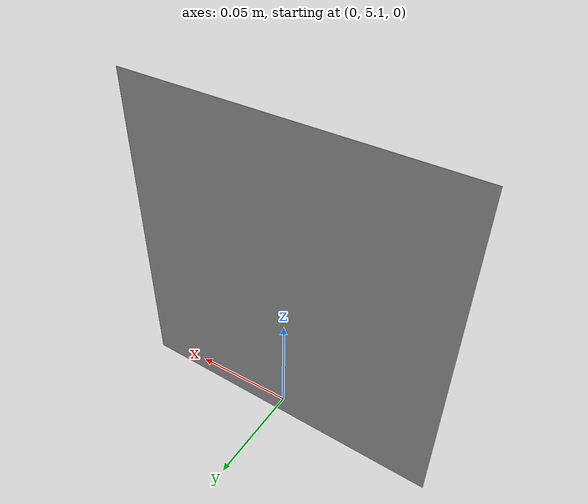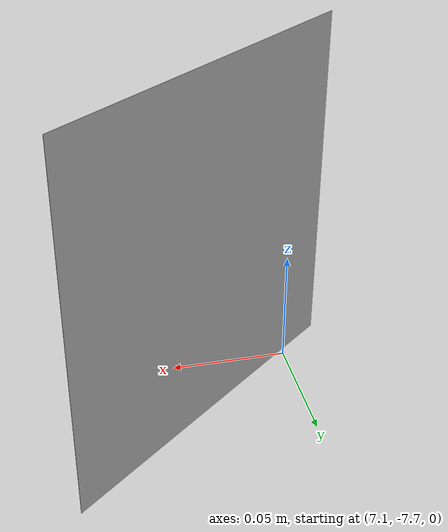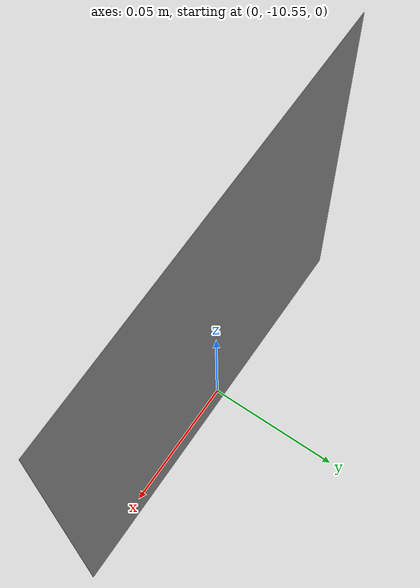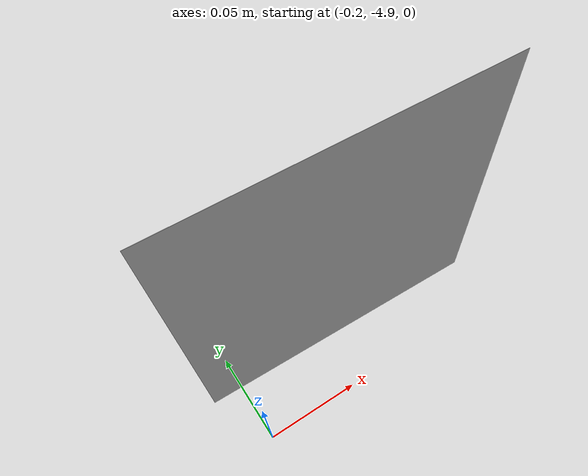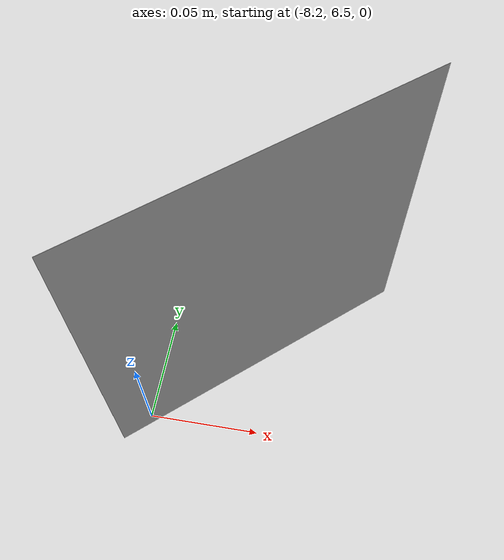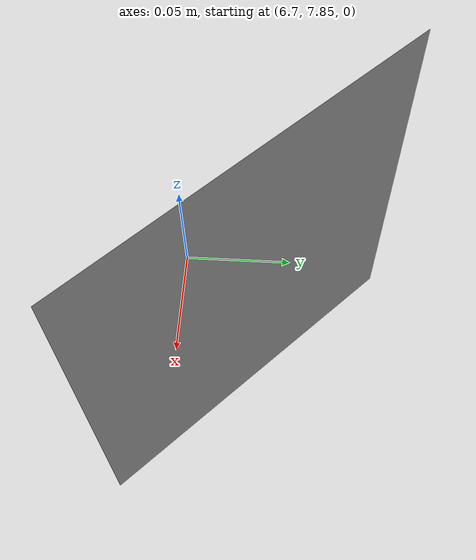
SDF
<sdf version="1.6">
 <world name="default">
  <scene><ambient>0.4 0.4 0.4 1</ambient><background>0.7 0.7 0.7 1</background><shadows>1</shadows></scene>
  <light name="sun" type="directional">
   <pose>0 0 10 0 -0 0</pose>
   <diffuse>0.8 0.8 0.8 1</diffuse>
   <specular>0.2 0.2 0.2 1</specular>
   <attenuation>
    <range>1000</range>
    <constant>0.9</constant>
    <linear>0.01</linear>
    <quadratic>0.001</quadratic>
   </attenuation>
   <direction>-0.5 0.1 -0.9</direction>
  </light>
  <model name="my_ground_plane">
   <static>1</static>
   <link name="link">
    <collision name="collision">
     <geometry><plane><normal>0 0 1</normal><size>100 100</size></plane></geometry>
     <surface><friction><ode><mu>100</mu><mu2>50</mu2></ode></friction></surface>
    </collision>
    <visual name="visual">
     <cast_shadows>0</cast_shadows>
     <geometry><plane><normal>0 0 1</normal><size>40 40</size></plane></geometry>
     <material>
      <script>
       <uri>model://my_ground_plane/materials/scripts</uri>
       <uri>model://my_ground_plane/materials/textures</uri>
       <name>MyGroundPlane/Image</name>
      </script>
     </material>
    </visual>
   </link>
  </model>
  <physics name="default_physics" default="0" type="ode">
   <real_time_update_rate>1000</real_time_update_rate>
   <max_step_size>0.001</max_step_size>
   <real_time_factor>3</real_time_factor>
   <ode>
    <solver>
     <type>quick</type>
     <iters>150</iters>
     <precon_iters>0</precon_iters>
     <sor>1.4</sor>
     <use_dynamic_moi_rescaling>1</use_dynamic_moi_rescaling>
    </solver>
    <constraints>
     <cfm>1e-05</cfm>
     <erp>0.2</erp>
     <contact_max_correcting_vel>2000</contact_max_correcting_vel>
     <contact_surface_layer>0.01</contact_surface_layer>
    </constraints>
   </ode>
  </physics>
  <gravity>0 0 -9.8</gravity>
  <magnetic_field>6e-06 2.3e-05 -4.2e-05</magnetic_field>
  <atmosphere type="adiabatic"/>
  <audio><device>default</device></audio>
  <spherical_coordinates>
   <surface_model>EARTH_WGS84</surface_model>
   <latitude_deg>0</latitude_deg>
   <longitude_deg>0</longitude_deg>
   <elevation>0</elevation>
   <heading_deg>0</heading_deg>
  </spherical_coordinates>
  <model name="marker1">
   <link name="link">
    <inertial>
     <mass>0.001</mass>
     <inertia>
      <ixx>3.75e-06</ixx>
      <ixy>0</ixy>
      <ixz>0</ixz>
      <iyy>1.875e-06</iyy>
      <iyz>0</iyz>
      <izz>1.875e-06</izz>
     </inertia>
    </inertial>
    <visual name="front_visual">
     <pose>5e-05 0 0 0 -0 0</pose>
     <geometry><box><size>0.0001 0.15 0.15</size></box></geometry>
     <material>
      <script>
       <uri>model://marker1/materials/scripts</uri>
       <uri>model://marker1/materials/textures</uri>
       <name>Marker1</name>
      </script>
     </material>
    </visual>
    <visual name="rear_visual">
     <pose>-5e-05 0 0 0 -0 0</pose>
     <geometry><box><size>0.0001 0.15 0.15</size></box></geometry>
    </visual>
    <collision name="collision"><geometry><box><size>0.0001 0.15 0.15</size></box></geometry></collision>
   </link>
   <pose>-7.39601 -7.431 0.075 0 -0 0.635055</pose>
  </model>
  <model name="marker2">
   <link name="link">
    <inertial>
     <mass>0.001</mass>
     <inertia>
      <ixx>3.75e-06</ixx>
      <ixy>0</ixy>
      <ixz>0</ixz>
      <iyy>1.875e-06</iyy>
      <iyz>0</iyz>
      <izz>1.875e-06</izz>
     </inertia>
    </inertial>
    <visual name="front_visual">
     <pose>5e-05 0 0 0 -0 0</pose>
     <geometry><box><size>0.0001 0.15 0.15</size></box></geometry>
     <material>
      <script>
       <uri>model://marker2/materials/scripts</uri>
       <uri>model://marker2/materials/textures</uri>
       <name>Marker2</name>
      </script>
     </material>
    </visual>
    <visual name="rear_visual">
     <pose>-5e-05 0 0 0 -0 0</pose>
     <geometry><box><size>0.0001 0.15 0.15</size></box></geometry>
    </visual>
    <collision name="collision"><geometry><box><size>0.0001 0.15 0.15</size></box></geometry></collision>
   </link>
   <pose>-10.4184 -0.031784 0.075 0 -0 5e-06</pose>
  </model>
  <model name="marker3">
   <link name="link">
    <inertial>
     <mass>0.001</mass>
     <inertia>
      <ixx>3.75e-06</ixx>
      <ixy>0</ixy>
      <ixz>0</ixz>
      <iyy>1.875e-06</iyy>
      <iyz>0</iyz>
      <izz>1.875e-06</izz>
     </inertia>
    </inertial>
    <visual name="front_visual">
     <pose>5e-05 0 0 0 -0 0</pose>
     <geometry><box><size>0.0001 0.15 0.15</size></box></geometry>
     <material>
      <script>
       <uri>model://marker3/materials/scripts</uri>
       <uri>model://marker3/materials/textures</uri>
       <name>Marker3</name>
      </script>
     </material>
    </visual>
    <visual name="rear_visual">
     <pose>-5e-05 0 0 0 -0 0</pose>
     <geometry><box><size>0.0001 0.15 0.15</size></box></geometry>
    </visual>
    <collision name="collision"><geometry><box><size>0.0001 0.15 0.15</size></box></geometry></collision>
   </link>
   <pose>-8.15366 6.53725 0.074997 -3.8e-05 -0 -0.844294</pose>
  </model>
  <model name="marker4">
   <link name="link">
    <inertial>
     <mass>0.001</mass>
     <inertia>
      <ixx>3.75e-06</ixx>
      <ixy>0</ixy>
      <ixz>0</ixz>
      <iyy>1.875e-06</iyy>
      <iyz>0</iyz>
      <izz>1.875e-06</izz>
     </inertia>
    </inertial>
    <visual name="front_visual">
     <pose>5e-05 0 0 0 -0 0</pose>
     <geometry><box><size>0.0001 0.15 0.15</size></box></geometry>
     <material>
      <script>
       <uri>model://marker4/materials/scripts</uri>
       <uri>model://marker4/materials/textures</uri>
       <name>Marker4</name>
      </script>
     </material>
    </visual>
    <visual name="rear_visual">
     <pose>-5e-05 0 0 0 -0 0</pose>
     <geometry><box><size>0.0001 0.15 0.15</size></box></geometry>
    </visual>
    <collision name="collision"><geometry><box><size>0.0001 0.15 0.15</size></box></geometry></collision>
   </link>
   <pose>-0.000153 10.3809 0.074996 -4.9e-05 -0 -1.56724</pose>
  </model>
  <model name="marker5">
   <link name="link">
    <inertial>
     <mass>0.001</mass>
     <inertia>
      <ixx>3.75e-06</ixx>
      <ixy>0</ixy>
      <ixz>0</ixz>
      <iyy>1.875e-06</iyy>
      <iyz>0</iyz>
      <izz>1.875e-06</izz>
     </inertia>
    </inertial>
    <visual name="front_visual">
     <pose>5e-05 0 0 0 -0 0</pose>
     <geometry><box><size>0.0001 0.15 0.15</size></box></geometry>
     <material>
      <script>
       <uri>model://marker5/materials/scripts</uri>
       <uri>model://marker5/materials/textures</uri>
       <name>Marker5</name>
      </script>
     </material>
    </visual>
    <visual name="rear_visual">
     <pose>-5e-05 0 0 0 -0 0</pose>
     <geometry><box><size>0.0001 0.15 0.15</size></box></geometry>
    </visual>
    <collision name="collision"><geometry><box><size>0.0001 0.15 0.15</size></box></geometry></collision>
   </link>
   <pose>6.76027 7.88625 0.075 0 0 -2.34902</pose>
  </model>
  <model name="marker6">
   <link name="link">
    <inertial>
     <mass>0.001</mass>
     <inertia>
      <ixx>3.75e-06</ixx>
      <ixy>0</ixy>
      <ixz>0</ixz>
      <iyy>1.875e-06</iyy>
      <iyz>0</iyz>
      <izz>1.875e-06</izz>
     </inertia>
    </inertial>
    <visual name="front_visual">
     <pose>5e-05 0 0 0 -0 0</pose>
     <geometry><box><size>0.0001 0.15 0.15</size></box></geometry>
     <material>
      <script>
       <uri>model://marker6/materials/scripts</uri>
       <uri>model://marker6/materials/textures</uri>
       <name>Marker6</name>
      </script>
     </material>
    </visual>
    <visual name="rear_visual">
     <pose>-5e-05 0 0 0 -0 0</pose>
     <geometry><box><size>0.0001 0.15 0.15</size></box></geometry>
    </visual>
    <collision name="collision"><geometry><box><size>0.0001 0.15 0.15</size></box></geometry></collision>
   </link>
   <pose>7.13976 -7.67098 0.074994 0 -0 2.24651</pose>
  </model>
  <model name="marker7">
   <link name="link">
    <inertial>
     <mass>0.001</mass>
     <inertia>
      <ixx>3.75e-06</ixx>
      <ixy>0</ixy>
      <ixz>0</ixz>
      <iyy>1.875e-06</iyy>
      <iyz>0</iyz>
      <izz>1.875e-06</izz>
     </inertia>
    </inertial>
    <visual name="front_visual">
     <pose>5e-05 0 0 0 -0 0</pose>
     <geometry><box><size>0.0001 0.15 0.15</size></box></geometry>
     <material>
      <script>
       <uri>model://marker7/materials/scripts</uri>
       <uri>model://marker7/materials/textures</uri>
       <name>Marker7</name>
      </script>
     </material>
    </visual>
    <visual name="rear_visual">
     <pose>-5e-05 0 0 0 -0 0</pose>
     <geometry><box><size>0.0001 0.15 0.15</size></box></geometry>
    </visual>
    <collision name="collision"><geometry><box><size>0.0001 0.15 0.15</size></box></geometry></collision>
   </link>
   <pose>10.4225 -0.005158 0.074998 2.4e-05 -0 -3.12668</pose>
  </model>
  <model name="marker8">
   <link name="link">
    <inertial>
     <mass>0.001</mass>
     <inertia>
      <ixx>3.75e-06</ixx>
      <ixy>0</ixy>
      <ixz>0</ixz>
      <iyy>1.875e-06</iyy>
      <iyz>0</iyz>
      <izz>1.875e-06</izz>
     </inertia>
    </inertial>
    <visual name="front_visual">
     <pose>5e-05 0 0 0 -0 0</pose>
     <geometry><box><size>0.0001 0.15 0.15</size></box></geometry>
     <material>
      <script>
       <uri>model://marker8/materials/scripts</uri>
       <uri>model://marker8/materials/textures</uri>
       <name>Marker8</name>
      </script>
     </material>
    </visual>
    <visual name="rear_visual">
     <pose>-5e-05 0 0 0 -0 0</pose>
     <geometry><box><size>0.0001 0.15 0.15</size></box></geometry>
    </visual>
    <collision name="collision"><geometry><box><size>0.0001 0.15 0.15</size></box></geometry></collision>
   </link>
   <pose>0.007073 -10.5472 0.075 0 -0 1.57407</pose>
  </model>
  <model name="marker10">
   <link name="link">
    <inertial>
     <mass>0.001</mass>
     <inertia>
      <ixx>3.75e-06</ixx>
      <ixy>0</ixy>
      <ixz>0</ixz>
      <iyy>1.875e-06</iyy>
      <iyz>0</iyz>
      <izz>1.875e-06</izz>
     </inertia>
    </inertial>
    <visual name="front_visual">
     <pose>5e-05 0 0 0 -0 0</pose>
     <geometry><box><size>0.0001 0.15 0.15</size></box></geometry>
     <material>
      <script>
       <uri>model://marker10/materials/scripts</uri>
       <uri>model://marker10/materials/textures</uri>
       <name>Marker10</name>
      </script>
     </material>
    </visual>
    <visual name="rear_visual">
     <pose>-5e-05 0 0 0 -0 0</pose>
     <geometry><box><size>0.0001 0.15 0.15</size></box></geometry>
    </visual>
    <collision name="collision"><geometry><box><size>0.0001 0.15 0.15</size></box></geometry></collision>
   </link>
   <pose>-0.005707 5.11214 0.08369 0 -0 1.54477</pose>
  </model>
  <model name="marker11">
   <link name="link">
    <inertial>
     <mass>0.001</mass>
     <inertia>
      <ixx>3.75e-06</ixx>
      <ixy>0</ixy>
      <ixz>0</ixz>
      <iyy>1.875e-06</iyy>
      <iyz>0</iyz>
      <izz>1.875e-06</izz>
     </inertia>
    </inertial>
    <visual name="front_visual">
     <pose>5e-05 0 0 0 -0 0</pose>
     <geometry><box><size>0.0001 0.15 0.15</size></box></geometry>
     <material>
      <script>
       <uri>model://marker11/materials/scripts</uri>
       <uri>model://marker11/materials/textures</uri>
       <name>Marker11</name>
      </script>
     </material>
    </visual>
    <visual name="rear_visual">
     <pose>-5e-05 0 0 0 -0 0</pose>
     <geometry><box><size>0.0001 0.15 0.15</size></box></geometry>
    </visual>
    <collision name="collision"><geometry><box><size>0.0001 0.15 0.15</size></box></geometry></collision>
   </link>
   <pose>-0.140937 -4.87572 0.093617 0 0 -1.59687</pose>
  </model>
 </world>
</sdf>
